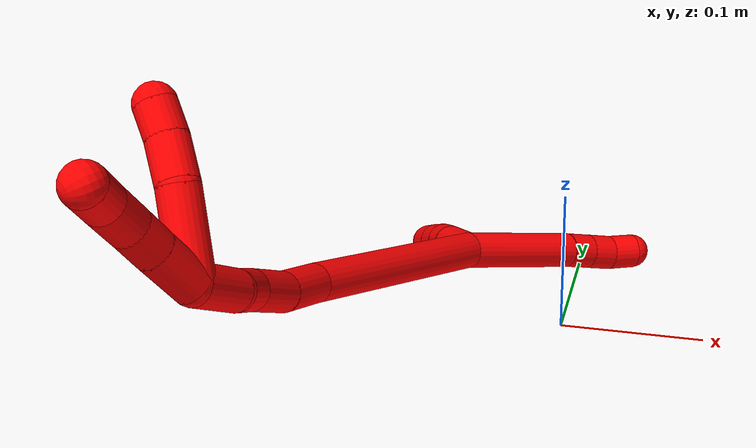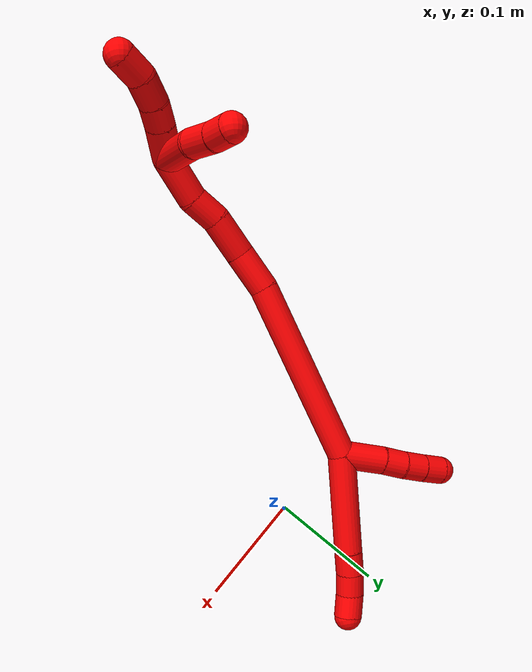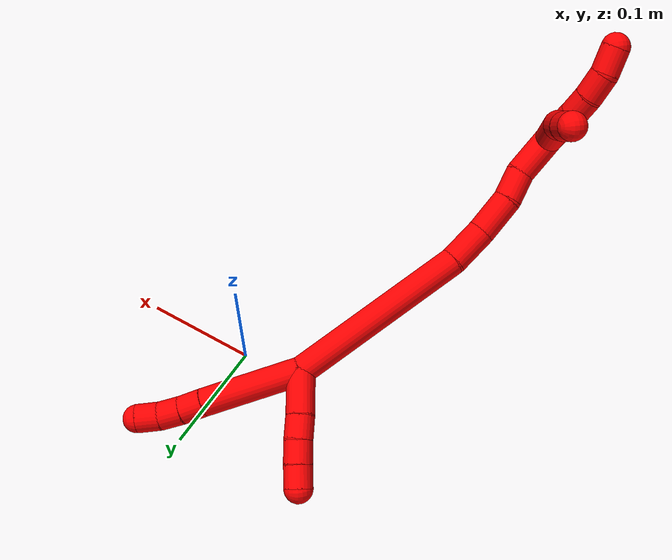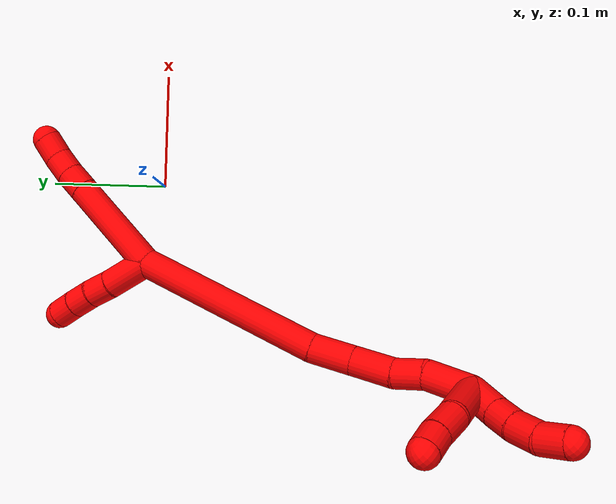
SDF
<sdf version="1.7">
 <world name="default">
  <model name="2">
   <static>0</static>
   <link name="2">
    <collision name="collision-cylinder-e_1_2_8">
     <pose>-0.001736 0.018967 -0.040351 -2.7022 -0.038905 0.173809</pose>
     <geometry><cylinder><radius>0.0125</radius><length>0.089241</length></cylinder></geometry>
     <surface>
      <friction><ode><mu>1.16</mu><mu2>1.16</mu2><slip1>0</slip1><slip2>0</slip2></ode></friction>
      <contact><ode><kp>1e+06</kp><kd>1</kd><max_vel>0</max_vel><min_depth>0.001</min_depth></ode></contact>
     </surface>
    </collision>
    <visual name="visual-cylinder-e_1_2_8">
     <pose>-0.001736 0.018967 -0.040351 -2.7022 -0.038905 0.173809</pose>
     <geometry><cylinder><radius>0.0125</radius><length>0.089241</length></cylinder></geometry>
     <material><ambient>1 0 0 1</ambient></material>
    </visual>
    <collision name="collision-cylinder-e_2_8_9">
     <pose>-0.003731 0.04265 -0.089627 -2.6554 -0.025726 0.103644</pose>
     <geometry><cylinder><radius>0.0125</radius><length>0.020193</length></cylinder></geometry>
     <surface>
      <friction><ode><mu>1.16</mu><mu2>1.16</mu2><slip1>0</slip1><slip2>0</slip2></ode></friction>
      <contact><ode><kp>1e+06</kp><kd>1</kd><max_vel>0</max_vel><min_depth>0.001</min_depth></ode></contact>
     </surface>
    </collision>
    <visual name="visual-cylinder-e_2_8_9">
     <pose>-0.003731 0.04265 -0.089627 -2.6554 -0.025726 0.103644</pose>
     <geometry><cylinder><radius>0.0125</radius><length>0.020193</length></cylinder></geometry>
     <material><ambient>1 0 0 1</ambient></material>
    </visual>
    <collision name="collision-cylinder-e_3_9_10">
     <pose>-0.005021 0.051937 -0.107435 -2.66649 -0.102755 0.418544</pose>
     <geometry><cylinder><radius>0.0125</radius><length>0.020088</length></cylinder></geometry>
     <surface>
      <friction><ode><mu>1.16</mu><mu2>1.16</mu2><slip1>0</slip1><slip2>0</slip2></ode></friction>
      <contact><ode><kp>1e+06</kp><kd>1</kd><max_vel>0</max_vel><min_depth>0.001</min_depth></ode></contact>
     </surface>
    </collision>
    <visual name="visual-cylinder-e_3_9_10">
     <pose>-0.005021 0.051937 -0.107435 -2.66649 -0.102755 0.418544</pose>
     <geometry><cylinder><radius>0.0125</radius><length>0.020088</length></cylinder></geometry>
     <material><ambient>1 0 0 1</ambient></material>
    </visual>
    <collision name="collision-cylinder-e_4_10_6">
     <pose>-0.00821 0.059724 -0.125796 -2.8143 -0.212488 1.14692</pose>
     <geometry><cylinder><radius>0.0125</radius><length>0.020477</length></cylinder></geometry>
     <surface>
      <friction><ode><mu>1.16</mu><mu2>1.16</mu2><slip1>0</slip1><slip2>0</slip2></ode></friction>
      <contact><ode><kp>1e+06</kp><kd>1</kd><max_vel>0</max_vel><min_depth>0.001</min_depth></ode></contact>
     </surface>
    </collision>
    <visual name="visual-cylinder-e_4_10_6">
     <pose>-0.00821 0.059724 -0.125796 -2.8143 -0.212488 1.14692</pose>
     <geometry><cylinder><radius>0.0125</radius><length>0.020477</length></cylinder></geometry>
     <material><ambient>1 0 0 1</ambient></material>
    </visual>
    <collision name="collision-cylinder-e_1_2_11">
     <pose>0.018408 0.004337 -0.004451 -2.36906 1.2452 -2.11067</pose>
     <geometry><cylinder><radius>0.0125</radius><length>0.038857</length></cylinder></geometry>
     <surface>
      <friction><ode><mu>1.16</mu><mu2>1.16</mu2><slip1>0</slip1><slip2>0</slip2></ode></friction>
      <contact><ode><kp>1e+06</kp><kd>1</kd><max_vel>0</max_vel><min_depth>0.001</min_depth></ode></contact>
     </surface>
    </collision>
    <visual name="visual-cylinder-e_1_2_11">
     <pose>0.018408 0.004337 -0.004451 -2.36906 1.2452 -2.11067</pose>
     <geometry><cylinder><radius>0.0125</radius><length>0.038857</length></cylinder></geometry>
     <material><ambient>1 0 0 1</ambient></material>
    </visual>
    <collision name="collision-cylinder-e_2_11_12">
     <pose>0.046286 0.011704 -0.011776 -2.33019 1.15551 -1.97648</pose>
     <geometry><cylinder><radius>0.0125</radius><length>0.020702</length></cylinder></geometry>
     <surface>
      <friction><ode><mu>1.16</mu><mu2>1.16</mu2><slip1>0</slip1><slip2>0</slip2></ode></friction>
      <contact><ode><kp>1e+06</kp><kd>1</kd><max_vel>0</max_vel><min_depth>0.001</min_depth></ode></contact>
     </surface>
    </collision>
    <visual name="visual-cylinder-e_2_11_12">
     <pose>0.046286 0.011704 -0.011776 -2.33019 1.15551 -1.97648</pose>
     <geometry><cylinder><radius>0.0125</radius><length>0.020702</length></cylinder></geometry>
     <material><ambient>1 0 0 1</ambient></material>
    </visual>
    <collision name="collision-cylinder-e_3_12_13">
     <pose>0.065027 0.018299 -0.016654 -2.08234 1.15525 -1.67797</pose>
     <geometry><cylinder><radius>0.0125</radius><length>0.020266</length></cylinder></geometry>
     <surface>
      <friction><ode><mu>1.16</mu><mu2>1.16</mu2><slip1>0</slip1><slip2>0</slip2></ode></friction>
      <contact><ode><kp>1e+06</kp><kd>1</kd><max_vel>0</max_vel><min_depth>0.001</min_depth></ode></contact>
     </surface>
    </collision>
    <visual name="visual-cylinder-e_3_12_13">
     <pose>0.065027 0.018299 -0.016654 -2.08234 1.15525 -1.67797</pose>
     <geometry><cylinder><radius>0.0125</radius><length>0.020266</length></cylinder></geometry>
     <material><ambient>1 0 0 1</ambient></material>
    </visual>
    <collision name="collision-cylinder-e_4_13_5">
     <pose>0.083515 0.025642 -0.020255 -1.97133 1.1522 -1.55111</pose>
     <geometry><cylinder><radius>0.0125</radius><length>0.020176</length></cylinder></geometry>
     <surface>
      <friction><ode><mu>1.16</mu><mu2>1.16</mu2><slip1>0</slip1><slip2>0</slip2></ode></friction>
      <contact><ode><kp>1e+06</kp><kd>1</kd><max_vel>0</max_vel><min_depth>0.001</min_depth></ode></contact>
     </surface>
    </collision>
    <visual name="visual-cylinder-e_4_13_5">
     <pose>0.083515 0.025642 -0.020255 -1.97133 1.1522 -1.55111</pose>
     <geometry><cylinder><radius>0.0125</radius><length>0.020176</length></cylinder></geometry>
     <material><ambient>1 0 0 1</ambient></material>
    </visual>
    <collision name="collision-cylinder-e_1_2_14">
     <pose>-0.025665 -0.03003 0.071086 0.3997 -0.321075 -0.065576</pose>
     <geometry><cylinder><radius>0.0125</radius><length>0.16265</length></cylinder></geometry>
     <surface>
      <friction><ode><mu>1.16</mu><mu2>1.16</mu2><slip1>0</slip1><slip2>0</slip2></ode></friction>
      <contact><ode><kp>1e+06</kp><kd>1</kd><max_vel>0</max_vel><min_depth>0.001</min_depth></ode></contact>
     </surface>
    </collision>
    <visual name="visual-cylinder-e_1_2_14">
     <pose>-0.025665 -0.03003 0.071086 0.3997 -0.321075 -0.065576</pose>
     <geometry><cylinder><radius>0.0125</radius><length>0.16265</length></cylinder></geometry>
     <material><ambient>1 0 0 1</ambient></material>
    </visual>
    <collision name="collision-cylinder-e_2_14_15">
     <pose>-0.059924 -0.066852 0.156492 0.442916 -0.496852 -0.114102</pose>
     <geometry><cylinder><radius>0.0125</radius><length>0.036058</length></cylinder></geometry>
     <surface>
      <friction><ode><mu>1.16</mu><mu2>1.16</mu2><slip1>0</slip1><slip2>0</slip2></ode></friction>
      <contact><ode><kp>1e+06</kp><kd>1</kd><max_vel>0</max_vel><min_depth>0.001</min_depth></ode></contact>
     </surface>
    </collision>
    <visual name="visual-cylinder-e_2_14_15">
     <pose>-0.059924 -0.066852 0.156492 0.442916 -0.496852 -0.114102</pose>
     <geometry><cylinder><radius>0.0125</radius><length>0.036058</length></cylinder></geometry>
     <material><ambient>1 0 0 1</ambient></material>
    </visual>
    <collision name="collision-cylinder-e_3_15_16">
     <pose>-0.077162 -0.083474 0.18347 0.660304 -0.494672 -0.172635</pose>
     <geometry><cylinder><radius>0.0125</radius><length>0.036419</length></cylinder></geometry>
     <surface>
      <friction><ode><mu>1.16</mu><mu2>1.16</mu2><slip1>0</slip1><slip2>0</slip2></ode></friction>
      <contact><ode><kp>1e+06</kp><kd>1</kd><max_vel>0</max_vel><min_depth>0.001</min_depth></ode></contact>
     </surface>
    </collision>
    <visual name="visual-cylinder-e_3_15_16">
     <pose>-0.077162 -0.083474 0.18347 0.660304 -0.494672 -0.172635</pose>
     <geometry><cylinder><radius>0.0125</radius><length>0.036419</length></cylinder></geometry>
     <material><ambient>1 0 0 1</ambient></material>
    </visual>
    <collision name="collision-cylinder-e_4_16_17">
     <pose>-0.094669 -0.099661 0.203475 0.713224 -0.739503 -0.286794</pose>
     <geometry><cylinder><radius>0.0125</radius><length>0.0263</length></cylinder></geometry>
     <surface>
      <friction><ode><mu>1.16</mu><mu2>1.16</mu2><slip1>0</slip1><slip2>0</slip2></ode></friction>
      <contact><ode><kp>1e+06</kp><kd>1</kd><max_vel>0</max_vel><min_depth>0.001</min_depth></ode></contact>
     </surface>
    </collision>
    <visual name="visual-cylinder-e_4_16_17">
     <pose>-0.094669 -0.099661 0.203475 0.713224 -0.739503 -0.286794</pose>
     <geometry><cylinder><radius>0.0125</radius><length>0.0263</length></cylinder></geometry>
     <material><ambient>1 0 0 1</ambient></material>
    </visual>
    <collision name="collision-cylinder-e_5_17_1">
     <pose>-0.111839 -0.117268 0.224103 0.702814 -0.445337 -0.165644</pose>
     <geometry><cylinder><radius>0.0125</radius><length>0.038573</length></cylinder></geometry>
     <surface>
      <friction><ode><mu>1.16</mu><mu2>1.16</mu2><slip1>0</slip1><slip2>0</slip2></ode></friction>
      <contact><ode><kp>1e+06</kp><kd>1</kd><max_vel>0</max_vel><min_depth>0.001</min_depth></ode></contact>
     </surface>
    </collision>
    <visual name="visual-cylinder-e_5_17_1">
     <pose>-0.111839 -0.117268 0.224103 0.702814 -0.445337 -0.165644</pose>
     <geometry><cylinder><radius>0.0125</radius><length>0.038573</length></cylinder></geometry>
     <material><ambient>1 0 0 1</ambient></material>
    </visual>
    <collision name="collision-cylinder-e_1_1_18">
     <pose>-0.121694 -0.142649 0.244541 1.10197 -0.097333 -0.059837</pose>
     <geometry><cylinder><radius>0.0125</radius><length>0.031832</length></cylinder></geometry>
     <surface>
      <friction><ode><mu>1.16</mu><mu2>1.16</mu2><slip1>0</slip1><slip2>0</slip2></ode></friction>
      <contact><ode><kp>1e+06</kp><kd>1</kd><max_vel>0</max_vel><min_depth>0.001</min_depth></ode></contact>
     </surface>
    </collision>
    <visual name="visual-cylinder-e_1_1_18">
     <pose>-0.121694 -0.142649 0.244541 1.10197 -0.097333 -0.059837</pose>
     <geometry><cylinder><radius>0.0125</radius><length>0.031832</length></cylinder></geometry>
     <material><ambient>1 0 0 1</ambient></material>
    </visual>
    <collision name="collision-cylinder-e_2_18_19">
     <pose>-0.124796 -0.165882 0.25612 1.11855 -0.152516 -0.095579</pose>
     <geometry><cylinder><radius>0.0125</radius><length>0.020473</length></cylinder></geometry>
     <surface>
      <friction><ode><mu>1.16</mu><mu2>1.16</mu2><slip1>0</slip1><slip2>0</slip2></ode></friction>
      <contact><ode><kp>1e+06</kp><kd>1</kd><max_vel>0</max_vel><min_depth>0.001</min_depth></ode></contact>
     </surface>
    </collision>
    <visual name="visual-cylinder-e_2_18_19">
     <pose>-0.124796 -0.165882 0.25612 1.11855 -0.152516 -0.095579</pose>
     <geometry><cylinder><radius>0.0125</radius><length>0.020473</length></cylinder></geometry>
     <material><ambient>1 0 0 1</ambient></material>
    </visual>
    <collision name="collision-cylinder-e_3_19_20">
     <pose>-0.130017 -0.184964 0.265745 1.09024 -0.31481 -0.191905</pose>
     <geometry><cylinder><radius>0.0125</radius><length>0.023677</length></cylinder></geometry>
     <surface>
      <friction><ode><mu>1.16</mu><mu2>1.16</mu2><slip1>0</slip1><slip2>0</slip2></ode></friction>
      <contact><ode><kp>1e+06</kp><kd>1</kd><max_vel>0</max_vel><min_depth>0.001</min_depth></ode></contact>
     </surface>
    </collision>
    <visual name="visual-cylinder-e_3_19_20">
     <pose>-0.130017 -0.184964 0.265745 1.09024 -0.31481 -0.191905</pose>
     <geometry><cylinder><radius>0.0125</radius><length>0.023677</length></cylinder></geometry>
     <material><ambient>1 0 0 1</ambient></material>
    </visual>
    <collision name="collision-cylinder-e_4_20_4">
     <pose>-0.140574 -0.203581 0.275653 1.07198 -0.611288 -0.370545</pose>
     <geometry><cylinder><radius>0.0125</radius><length>0.024018</length></cylinder></geometry>
     <surface>
      <friction><ode><mu>1.16</mu><mu2>1.16</mu2><slip1>0</slip1><slip2>0</slip2></ode></friction>
      <contact><ode><kp>1e+06</kp><kd>1</kd><max_vel>0</max_vel><min_depth>0.001</min_depth></ode></contact>
     </surface>
    </collision>
    <visual name="visual-cylinder-e_4_20_4">
     <pose>-0.140574 -0.203581 0.275653 1.07198 -0.611288 -0.370545</pose>
     <geometry><cylinder><radius>0.0125</radius><length>0.024018</length></cylinder></geometry>
     <material><ambient>1 0 0 1</ambient></material>
    </visual>
    <collision name="collision-cylinder-e_1_1_21">
     <pose>-0.110617 -0.151831 0.229404 1.9006 0.369044 0.510924</pose>
     <geometry><cylinder><radius>0.0125</radius><length>0.05284</length></cylinder></geometry>
     <surface>
      <friction><ode><mu>1.16</mu><mu2>1.16</mu2><slip1>0</slip1><slip2>0</slip2></ode></friction>
      <contact><ode><kp>1e+06</kp><kd>1</kd><max_vel>0</max_vel><min_depth>0.001</min_depth></ode></contact>
     </surface>
    </collision>
    <visual name="visual-cylinder-e_1_1_21">
     <pose>-0.110617 -0.151831 0.229404 1.9006 0.369044 0.510924</pose>
     <geometry><cylinder><radius>0.0125</radius><length>0.05284</length></cylinder></geometry>
     <material><ambient>1 0 0 1</ambient></material>
    </visual>
    <collision name="collision-cylinder-e_2_21_22">
     <pose>-0.09313 -0.18517 0.217473 1.94618 0.636037 0.90081</pose>
     <geometry><cylinder><radius>0.0125</radius><length>0.02679</length></cylinder></geometry>
     <surface>
      <friction><ode><mu>1.16</mu><mu2>1.16</mu2><slip1>0</slip1><slip2>0</slip2></ode></friction>
      <contact><ode><kp>1e+06</kp><kd>1</kd><max_vel>0</max_vel><min_depth>0.001</min_depth></ode></contact>
     </surface>
    </collision>
    <visual name="visual-cylinder-e_2_21_22">
     <pose>-0.09313 -0.18517 0.217473 1.94618 0.636037 0.90081</pose>
     <geometry><cylinder><radius>0.0125</radius><length>0.02679</length></cylinder></geometry>
     <material><ambient>1 0 0 1</ambient></material>
    </visual>
    <collision name="collision-cylinder-e_3_22_3">
     <pose>-0.079228 -0.203246 0.21163 1.80168 0.623235 0.772389</pose>
     <geometry><cylinder><radius>0.0125</radius><length>0.02037</length></cylinder></geometry>
     <surface>
      <friction><ode><mu>1.16</mu><mu2>1.16</mu2><slip1>0</slip1><slip2>0</slip2></ode></friction>
      <contact><ode><kp>1e+06</kp><kd>1</kd><max_vel>0</max_vel><min_depth>0.001</min_depth></ode></contact>
     </surface>
    </collision>
    <visual name="visual-cylinder-e_3_22_3">
     <pose>-0.079228 -0.203246 0.21163 1.80168 0.623235 0.772389</pose>
     <geometry><cylinder><radius>0.0125</radius><length>0.02037</length></cylinder></geometry>
     <material><ambient>1 0 0 1</ambient></material>
    </visual>
    <collision name="collision-sphere-3">
     <pose>-0.073284 -0.211296 0.209737 0 -0 0</pose>
     <geometry><sphere><radius>0.0125</radius></sphere></geometry>
     <surface>
      <friction><ode><mu>1.16</mu><mu2>1.16</mu2><slip1>0</slip1><slip2>0</slip2></ode></friction>
      <contact><ode><kp>1e+06</kp><kd>1</kd><max_vel>0</max_vel><min_depth>0.001</min_depth></ode></contact>
     </surface>
    </collision>
    <visual name="visual-sphere-3">
     <pose>-0.073284 -0.211296 0.209737 0 -0 0</pose>
     <geometry><sphere><radius>0.0125</radius></sphere></geometry>
     <material><ambient>1 0 0 1</ambient></material>
    </visual>
    <collision name="collision-sphere-22">
     <pose>-0.085173 -0.195195 0.213522 0 -0 0</pose>
     <geometry><sphere><radius>0.0125</radius></sphere></geometry>
     <surface>
      <friction><ode><mu>1.16</mu><mu2>1.16</mu2><slip1>0</slip1><slip2>0</slip2></ode></friction>
      <contact><ode><kp>1e+06</kp><kd>1</kd><max_vel>0</max_vel><min_depth>0.001</min_depth></ode></contact>
     </surface>
    </collision>
    <visual name="visual-sphere-22">
     <pose>-0.085173 -0.195195 0.213522 0 -0 0</pose>
     <geometry><sphere><radius>0.0125</radius></sphere></geometry>
     <material><ambient>1 0 0 1</ambient></material>
    </visual>
    <collision name="collision-sphere-21">
     <pose>-0.101087 -0.175144 0.221423 0 -0 0</pose>
     <geometry><sphere><radius>0.0125</radius></sphere></geometry>
     <surface>
      <friction><ode><mu>1.16</mu><mu2>1.16</mu2><slip1>0</slip1><slip2>0</slip2></ode></friction>
      <contact><ode><kp>1e+06</kp><kd>1</kd><max_vel>0</max_vel><min_depth>0.001</min_depth></ode></contact>
     </surface>
    </collision>
    <visual name="visual-sphere-21">
     <pose>-0.101087 -0.175144 0.221423 0 -0 0</pose>
     <geometry><sphere><radius>0.0125</radius></sphere></geometry>
     <material><ambient>1 0 0 1</ambient></material>
    </visual>
    <collision name="collision-sphere-4">
     <pose>-0.147467 -0.212217 0.280358 0 -0 0</pose>
     <geometry><sphere><radius>0.0125</radius></sphere></geometry>
     <surface>
      <friction><ode><mu>1.16</mu><mu2>1.16</mu2><slip1>0</slip1><slip2>0</slip2></ode></friction>
      <contact><ode><kp>1e+06</kp><kd>1</kd><max_vel>0</max_vel><min_depth>0.001</min_depth></ode></contact>
     </surface>
    </collision>
    <visual name="visual-sphere-4">
     <pose>-0.147467 -0.212217 0.280358 0 -0 0</pose>
     <geometry><sphere><radius>0.0125</radius></sphere></geometry>
     <material><ambient>1 0 0 1</ambient></material>
    </visual>
    <collision name="collision-sphere-20">
     <pose>-0.133682 -0.194945 0.270949 0 -0 0</pose>
     <geometry><sphere><radius>0.0125</radius></sphere></geometry>
     <surface>
      <friction><ode><mu>1.16</mu><mu2>1.16</mu2><slip1>0</slip1><slip2>0</slip2></ode></friction>
      <contact><ode><kp>1e+06</kp><kd>1</kd><max_vel>0</max_vel><min_depth>0.001</min_depth></ode></contact>
     </surface>
    </collision>
    <visual name="visual-sphere-20">
     <pose>-0.133682 -0.194945 0.270949 0 -0 0</pose>
     <geometry><sphere><radius>0.0125</radius></sphere></geometry>
     <material><ambient>1 0 0 1</ambient></material>
    </visual>
    <collision name="collision-sphere-11">
     <pose>0.036815 0.008675 -0.008901 0 -0 0</pose>
     <geometry><sphere><radius>0.0125</radius></sphere></geometry>
     <surface>
      <friction><ode><mu>1.16</mu><mu2>1.16</mu2><slip1>0</slip1><slip2>0</slip2></ode></friction>
      <contact><ode><kp>1e+06</kp><kd>1</kd><max_vel>0</max_vel><min_depth>0.001</min_depth></ode></contact>
     </surface>
    </collision>
    <visual name="visual-sphere-11">
     <pose>0.036815 0.008675 -0.008901 0 -0 0</pose>
     <geometry><sphere><radius>0.0125</radius></sphere></geometry>
     <material><ambient>1 0 0 1</ambient></material>
    </visual>
    <collision name="collision-sphere-6">
     <pose>-0.01037 0.062942 -0.135274 0 -0 0</pose>
     <geometry><sphere><radius>0.0125</radius></sphere></geometry>
     <surface>
      <friction><ode><mu>1.16</mu><mu2>1.16</mu2><slip1>0</slip1><slip2>0</slip2></ode></friction>
      <contact><ode><kp>1e+06</kp><kd>1</kd><max_vel>0</max_vel><min_depth>0.001</min_depth></ode></contact>
     </surface>
    </collision>
    <visual name="visual-sphere-6">
     <pose>-0.01037 0.062942 -0.135274 0 -0 0</pose>
     <geometry><sphere><radius>0.0125</radius></sphere></geometry>
     <material><ambient>1 0 0 1</ambient></material>
    </visual>
    <collision name="collision-sphere-10">
     <pose>-0.006051 0.056507 -0.116319 0 -0 0</pose>
     <geometry><sphere><radius>0.0125</radius></sphere></geometry>
     <surface>
      <friction><ode><mu>1.16</mu><mu2>1.16</mu2><slip1>0</slip1><slip2>0</slip2></ode></friction>
      <contact><ode><kp>1e+06</kp><kd>1</kd><max_vel>0</max_vel><min_depth>0.001</min_depth></ode></contact>
     </surface>
    </collision>
    <visual name="visual-sphere-10">
     <pose>-0.006051 0.056507 -0.116319 0 -0 0</pose>
     <geometry><sphere><radius>0.0125</radius></sphere></geometry>
     <material><ambient>1 0 0 1</ambient></material>
    </visual>
    <collision name="collision-sphere-9">
     <pose>-0.00399 0.047366 -0.09855 0 -0 0</pose>
     <geometry><sphere><radius>0.0125</radius></sphere></geometry>
     <surface>
      <friction><ode><mu>1.16</mu><mu2>1.16</mu2><slip1>0</slip1><slip2>0</slip2></ode></friction>
      <contact><ode><kp>1e+06</kp><kd>1</kd><max_vel>0</max_vel><min_depth>0.001</min_depth></ode></contact>
     </surface>
    </collision>
    <visual name="visual-sphere-9">
     <pose>-0.00399 0.047366 -0.09855 0 -0 0</pose>
     <geometry><sphere><radius>0.0125</radius></sphere></geometry>
     <material><ambient>1 0 0 1</ambient></material>
    </visual>
    <collision name="collision-sphere-2">
     <geometry><sphere><radius>0.0125</radius></sphere></geometry>
     <surface>
      <friction><ode><mu>1.16</mu><mu2>1.16</mu2><slip1>0</slip1><slip2>0</slip2></ode></friction>
      <contact><ode><kp>1e+06</kp><kd>1</kd><max_vel>0</max_vel><min_depth>0.001</min_depth></ode></contact>
     </surface>
    </collision>
    <visual name="visual-sphere-2">
     <geometry><sphere><radius>0.0125</radius></sphere></geometry>
     <material><ambient>1 0 0 1</ambient></material>
    </visual>
    <collision name="collision-sphere-19">
     <pose>-0.126351 -0.174982 0.260541 0 -0 0</pose>
     <geometry><sphere><radius>0.0125</radius></sphere></geometry>
     <surface>
      <friction><ode><mu>1.16</mu><mu2>1.16</mu2><slip1>0</slip1><slip2>0</slip2></ode></friction>
      <contact><ode><kp>1e+06</kp><kd>1</kd><max_vel>0</max_vel><min_depth>0.001</min_depth></ode></contact>
     </surface>
    </collision>
    <visual name="visual-sphere-19">
     <pose>-0.126351 -0.174982 0.260541 0 -0 0</pose>
     <geometry><sphere><radius>0.0125</radius></sphere></geometry>
     <material><ambient>1 0 0 1</ambient></material>
    </visual>
    <collision name="collision-sphere-8">
     <pose>-0.003471 0.037934 -0.080703 0 -0 0</pose>
     <geometry><sphere><radius>0.0125</radius></sphere></geometry>
     <surface>
      <friction><ode><mu>1.16</mu><mu2>1.16</mu2><slip1>0</slip1><slip2>0</slip2></ode></friction>
      <contact><ode><kp>1e+06</kp><kd>1</kd><max_vel>0</max_vel><min_depth>0.001</min_depth></ode></contact>
     </surface>
    </collision>
    <visual name="visual-sphere-8">
     <pose>-0.003471 0.037934 -0.080703 0 -0 0</pose>
     <geometry><sphere><radius>0.0125</radius></sphere></geometry>
     <material><ambient>1 0 0 1</ambient></material>
    </visual>
    <collision name="collision-sphere-12">
     <pose>0.055757 0.014732 -0.014651 0 -0 0</pose>
     <geometry><sphere><radius>0.0125</radius></sphere></geometry>
     <surface>
      <friction><ode><mu>1.16</mu><mu2>1.16</mu2><slip1>0</slip1><slip2>0</slip2></ode></friction>
      <contact><ode><kp>1e+06</kp><kd>1</kd><max_vel>0</max_vel><min_depth>0.001</min_depth></ode></contact>
     </surface>
    </collision>
    <visual name="visual-sphere-12">
     <pose>0.055757 0.014732 -0.014651 0 -0 0</pose>
     <geometry><sphere><radius>0.0125</radius></sphere></geometry>
     <material><ambient>1 0 0 1</ambient></material>
    </visual>
    <collision name="collision-sphere-13">
     <pose>0.074298 0.021866 -0.018656 0 -0 0</pose>
     <geometry><sphere><radius>0.0125</radius></sphere></geometry>
     <surface>
      <friction><ode><mu>1.16</mu><mu2>1.16</mu2><slip1>0</slip1><slip2>0</slip2></ode></friction>
      <contact><ode><kp>1e+06</kp><kd>1</kd><max_vel>0</max_vel><min_depth>0.001</min_depth></ode></contact>
     </surface>
    </collision>
    <visual name="visual-sphere-13">
     <pose>0.074298 0.021866 -0.018656 0 -0 0</pose>
     <geometry><sphere><radius>0.0125</radius></sphere></geometry>
     <material><ambient>1 0 0 1</ambient></material>
    </visual>
    <collision name="collision-sphere-5">
     <pose>0.092732 0.029418 -0.021854 0 -0 0</pose>
     <geometry><sphere><radius>0.0125</radius></sphere></geometry>
     <surface>
      <friction><ode><mu>1.16</mu><mu2>1.16</mu2><slip1>0</slip1><slip2>0</slip2></ode></friction>
      <contact><ode><kp>1e+06</kp><kd>1</kd><max_vel>0</max_vel><min_depth>0.001</min_depth></ode></contact>
     </surface>
    </collision>
    <visual name="visual-sphere-5">
     <pose>0.092732 0.029418 -0.021854 0 -0 0</pose>
     <geometry><sphere><radius>0.0125</radius></sphere></geometry>
     <material><ambient>1 0 0 1</ambient></material>
    </visual>
    <collision name="collision-sphere-14">
     <pose>-0.05133 -0.060059 0.142173 0 -0 0</pose>
     <geometry><sphere><radius>0.0125</radius></sphere></geometry>
     <surface>
      <friction><ode><mu>1.16</mu><mu2>1.16</mu2><slip1>0</slip1><slip2>0</slip2></ode></friction>
      <contact><ode><kp>1e+06</kp><kd>1</kd><max_vel>0</max_vel><min_depth>0.001</min_depth></ode></contact>
     </surface>
    </collision>
    <visual name="visual-sphere-14">
     <pose>-0.05133 -0.060059 0.142173 0 -0 0</pose>
     <geometry><sphere><radius>0.0125</radius></sphere></geometry>
     <material><ambient>1 0 0 1</ambient></material>
    </visual>
    <collision name="collision-sphere-15">
     <pose>-0.068518 -0.073644 0.170812 0 -0 0</pose>
     <geometry><sphere><radius>0.0125</radius></sphere></geometry>
     <surface>
      <friction><ode><mu>1.16</mu><mu2>1.16</mu2><slip1>0</slip1><slip2>0</slip2></ode></friction>
      <contact><ode><kp>1e+06</kp><kd>1</kd><max_vel>0</max_vel><min_depth>0.001</min_depth></ode></contact>
     </surface>
    </collision>
    <visual name="visual-sphere-15">
     <pose>-0.068518 -0.073644 0.170812 0 -0 0</pose>
     <geometry><sphere><radius>0.0125</radius></sphere></geometry>
     <material><ambient>1 0 0 1</ambient></material>
    </visual>
    <collision name="collision-sphere-16">
     <pose>-0.085807 -0.093304 0.196128 0 -0 0</pose>
     <geometry><sphere><radius>0.0125</radius></sphere></geometry>
     <surface>
      <friction><ode><mu>1.16</mu><mu2>1.16</mu2><slip1>0</slip1><slip2>0</slip2></ode></friction>
      <contact><ode><kp>1e+06</kp><kd>1</kd><max_vel>0</max_vel><min_depth>0.001</min_depth></ode></contact>
     </surface>
    </collision>
    <visual name="visual-sphere-16">
     <pose>-0.085807 -0.093304 0.196128 0 -0 0</pose>
     <geometry><sphere><radius>0.0125</radius></sphere></geometry>
     <material><ambient>1 0 0 1</ambient></material>
    </visual>
    <collision name="collision-sphere-17">
     <pose>-0.103531 -0.106017 0.210822 0 -0 0</pose>
     <geometry><sphere><radius>0.0125</radius></sphere></geometry>
     <surface>
      <friction><ode><mu>1.16</mu><mu2>1.16</mu2><slip1>0</slip1><slip2>0</slip2></ode></friction>
      <contact><ode><kp>1e+06</kp><kd>1</kd><max_vel>0</max_vel><min_depth>0.001</min_depth></ode></contact>
     </surface>
    </collision>
    <visual name="visual-sphere-17">
     <pose>-0.103531 -0.106017 0.210822 0 -0 0</pose>
     <geometry><sphere><radius>0.0125</radius></sphere></geometry>
     <material><ambient>1 0 0 1</ambient></material>
    </visual>
    <collision name="collision-sphere-1">
     <pose>-0.120147 -0.128518 0.237384 0 -0 0</pose>
     <geometry><sphere><radius>0.0125</radius></sphere></geometry>
     <surface>
      <friction><ode><mu>1.16</mu><mu2>1.16</mu2><slip1>0</slip1><slip2>0</slip2></ode></friction>
      <contact><ode><kp>1e+06</kp><kd>1</kd><max_vel>0</max_vel><min_depth>0.001</min_depth></ode></contact>
     </surface>
    </collision>
    <visual name="visual-sphere-1">
     <pose>-0.120147 -0.128518 0.237384 0 -0 0</pose>
     <geometry><sphere><radius>0.0125</radius></sphere></geometry>
     <material><ambient>1 0 0 1</ambient></material>
    </visual>
    <collision name="collision-sphere-18">
     <pose>-0.123241 -0.156781 0.251699 0 -0 0</pose>
     <geometry><sphere><radius>0.0125</radius></sphere></geometry>
     <surface>
      <friction><ode><mu>1.16</mu><mu2>1.16</mu2><slip1>0</slip1><slip2>0</slip2></ode></friction>
      <contact><ode><kp>1e+06</kp><kd>1</kd><max_vel>0</max_vel><min_depth>0.001</min_depth></ode></contact>
     </surface>
    </collision>
    <visual name="visual-sphere-18">
     <pose>-0.123241 -0.156781 0.251699 0 -0 0</pose>
     <geometry><sphere><radius>0.0125</radius></sphere></geometry>
     <material><ambient>1 0 0 1</ambient></material>
    </visual>
    <inertial>
     <pose>-0.046146 -0.06092 0.099698 0 -0 0</pose>
     <mass>0.75</mass>
     <inertia>
      <ixx>0.000439</ixx>
      <ixy>0</ixy>
      <ixz>0</ixz>
      <iyy>0.000286</iyy>
      <iyz>0</iyz>
      <izz>0.000257</izz>
     </inertia>
    </inertial>
   </link>
   <pose>-0.069234 0.009653 0.047889 -1.75081 0.119904 2.40292</pose>
  </model>
 </world>
</sdf>
